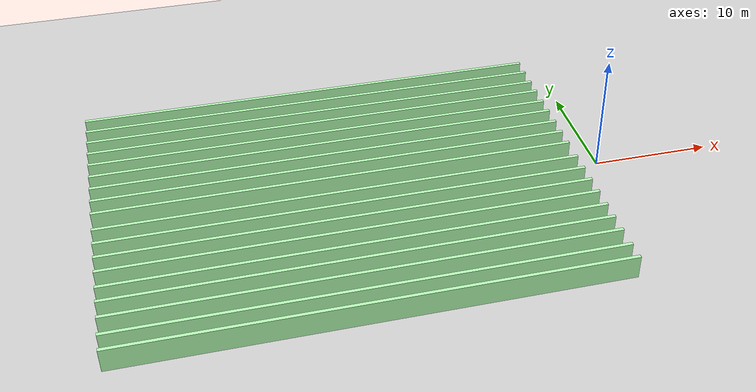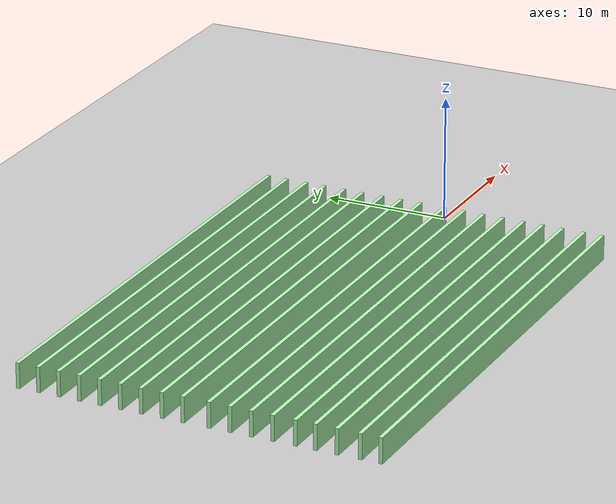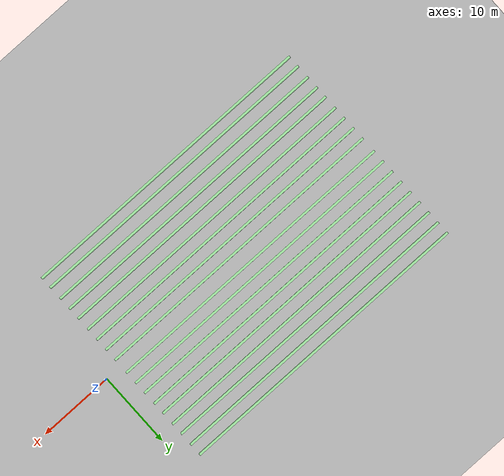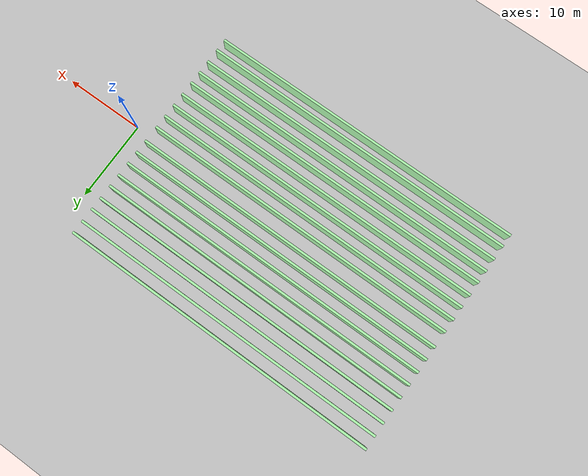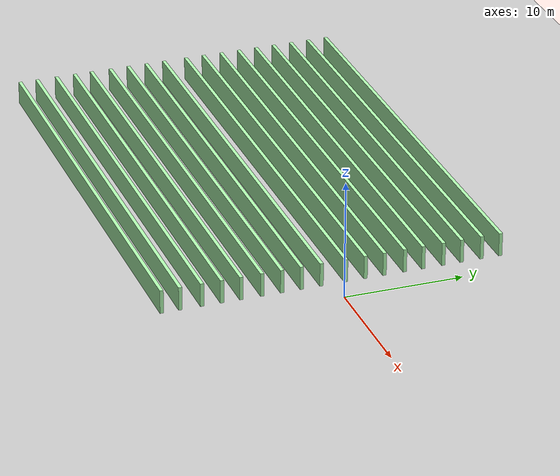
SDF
<sdf version="1.7">
 <world name="default">
  <model name="ground_plane">
   <static>1</static>
   <link name="link">
    <collision name="collision">
     <geometry><plane><normal>0 0 1</normal><size>100 100</size></plane></geometry>
     <surface>
      <contact><collide_bitmask>65535</collide_bitmask></contact>
      <friction><ode><mu>100</mu><mu2>50</mu2></ode></friction>
     </surface>
    </collision>
    <visual name="visual">
     <cast_shadows>0</cast_shadows>
     <geometry><plane><normal>0 0 1</normal><size>100 100</size></plane></geometry>
     <material>
      <script><uri>file://media/materials/scripts/gazebo.material</uri><name>Gazebo/Grey</name></script>
     </material>
    </visual>
   </link>
  </model>
  <model name="carril_inv_real">
   <link name="link_0">
    <inertial>
     <mass>400</mass>
     <inertia><ixx>66.6667</ixx><ixy>0</ixy><ixz>0</ixz><iyy>53366.7</iyy><iyz>0</iyz><izz>53366.7</izz></inertia>
    </inertial>
    <visual name="visual">
     <geometry><box><size>40 0.3 2</size></box></geometry>
     <material>
      <lighting>1</lighting>
      <script><uri>file://media/materials/scripts/gazebo.material</uri><name>Gazebo/Grey</name></script>
      <shader type="pixel"><normal_map>__default__</normal_map></shader>
      <ambient>0.3 0.3 0.3 1</ambient>
      <diffuse>0.7 1 0.7 1</diffuse>
      <specular>0.01 1 0.01 1</specular>
      <emissive>0 1 0 1</emissive>
     </material>
    </visual>
    <collision name="collision">
     <geometry><box><size>40 0.3 2</size></box></geometry>
     <surface>
      <friction>
       <ode><mu>1</mu><mu2>1</mu2><fdir1>0 0 0</fdir1><slip1>0</slip1><slip2>0</slip2></ode>
       <torsional>
        <coefficient>1</coefficient>
        <patch_radius>0</patch_radius>
        <surface_radius>0</surface_radius>
        <use_patch_radius>1</use_patch_radius>
        <ode><slip>0</slip></ode>
       </torsional>
      </friction>
      <bounce><restitution_coefficient>0</restitution_coefficient><threshold>1e+06</threshold></bounce>
      <contact>
       <collide_without_contact>0</collide_without_contact>
       <collide_without_contact_bitmask>1</collide_without_contact_bitmask>
       <collide_bitmask>1</collide_bitmask>
       <ode>
        <soft_cfm>0</soft_cfm>
        <soft_erp>0.2</soft_erp>
        <kp>1e+13</kp>
        <kd>1</kd>
        <max_vel>0.01</max_vel>
        <min_depth>0</min_depth>
       </ode>
       <bullet>
        <split_impulse>1</split_impulse>
        <split_impulse_penetration_threshold>-0.01</split_impulse_penetration_threshold>
        <soft_cfm>0</soft_cfm>
        <soft_erp>0.2</soft_erp>
        <kp>1e+13</kp>
        <kd>1</kd>
       </bullet>
      </contact>
     </surface>
    </collision>
   </link>
   <static>0</static>
   <pose>-22.3 14.225 0.999986 0 -1e-06 -0.000337</pose>
  </model>
  <model name="carril_inv_real_clone">
   <link name="link_0">
    <inertial>
     <mass>400</mass>
     <inertia><ixx>66.6667</ixx><ixy>0</ixy><ixz>0</ixz><iyy>53366.7</iyy><iyz>0</iyz><izz>53366.7</izz></inertia>
    </inertial>
    <visual name="visual">
     <geometry><box><size>40 0.3 2</size></box></geometry>
     <material>
      <lighting>1</lighting>
      <script><uri>file://media/materials/scripts/gazebo.material</uri><name>Gazebo/Grey</name></script>
      <shader type="pixel"><normal_map>__default__</normal_map></shader>
      <ambient>0.3 0.3 0.3 1</ambient>
      <diffuse>0.7 1 0.7 1</diffuse>
      <specular>0.01 1 0.01 1</specular>
      <emissive>0 1 0 1</emissive>
     </material>
    </visual>
    <collision name="collision">
     <geometry><box><size>40 0.3 2</size></box></geometry>
     <surface>
      <friction>
       <ode><mu>1</mu><mu2>1</mu2><fdir1>0 0 0</fdir1><slip1>0</slip1><slip2>0</slip2></ode>
       <torsional>
        <coefficient>1</coefficient>
        <patch_radius>0</patch_radius>
        <surface_radius>0</surface_radius>
        <use_patch_radius>1</use_patch_radius>
        <ode><slip>0</slip></ode>
       </torsional>
      </friction>
      <bounce><restitution_coefficient>0</restitution_coefficient><threshold>1e+06</threshold></bounce>
      <contact>
       <collide_without_contact>0</collide_without_contact>
       <collide_without_contact_bitmask>1</collide_without_contact_bitmask>
       <collide_bitmask>1</collide_bitmask>
       <ode>
        <soft_cfm>0</soft_cfm>
        <soft_erp>0.2</soft_erp>
        <kp>1e+13</kp>
        <kd>1</kd>
        <max_vel>0.01</max_vel>
        <min_depth>0</min_depth>
       </ode>
       <bullet>
        <split_impulse>1</split_impulse>
        <split_impulse_penetration_threshold>-0.01</split_impulse_penetration_threshold>
        <soft_cfm>0</soft_cfm>
        <soft_erp>0.2</soft_erp>
        <kp>1e+13</kp>
        <kd>1</kd>
       </bullet>
      </contact>
     </surface>
    </collision>
   </link>
   <static>0</static>
   <pose>-22.2999 12.5908 1 0 -0 0.000855</pose>
  </model>
  <model name="carril_inv_real_clone_0">
   <link name="link_0">
    <inertial>
     <mass>400</mass>
     <inertia><ixx>66.6667</ixx><ixy>0</ixy><ixz>0</ixz><iyy>53366.7</iyy><iyz>0</iyz><izz>53366.7</izz></inertia>
    </inertial>
    <visual name="visual">
     <geometry><box><size>40 0.3 2</size></box></geometry>
     <material>
      <lighting>1</lighting>
      <script><uri>file://media/materials/scripts/gazebo.material</uri><name>Gazebo/Grey</name></script>
      <shader type="pixel"><normal_map>__default__</normal_map></shader>
      <ambient>0.3 0.3 0.3 1</ambient>
      <diffuse>0.7 1 0.7 1</diffuse>
      <specular>0.01 1 0.01 1</specular>
      <emissive>0 1 0 1</emissive>
     </material>
    </visual>
    <collision name="collision">
     <geometry><box><size>40 0.3 2</size></box></geometry>
     <surface>
      <friction>
       <ode><mu>1</mu><mu2>1</mu2><fdir1>0 0 0</fdir1><slip1>0</slip1><slip2>0</slip2></ode>
       <torsional>
        <coefficient>1</coefficient>
        <patch_radius>0</patch_radius>
        <surface_radius>0</surface_radius>
        <use_patch_radius>1</use_patch_radius>
        <ode><slip>0</slip></ode>
       </torsional>
      </friction>
      <bounce><restitution_coefficient>0</restitution_coefficient><threshold>1e+06</threshold></bounce>
      <contact>
       <collide_without_contact>0</collide_without_contact>
       <collide_without_contact_bitmask>1</collide_without_contact_bitmask>
       <collide_bitmask>1</collide_bitmask>
       <ode>
        <soft_cfm>0</soft_cfm>
        <soft_erp>0.2</soft_erp>
        <kp>1e+13</kp>
        <kd>1</kd>
        <max_vel>0.01</max_vel>
        <min_depth>0</min_depth>
       </ode>
       <bullet>
        <split_impulse>1</split_impulse>
        <split_impulse_penetration_threshold>-0.01</split_impulse_penetration_threshold>
        <soft_cfm>0</soft_cfm>
        <soft_erp>0.2</soft_erp>
        <kp>1e+13</kp>
        <kd>1</kd>
       </bullet>
      </contact>
     </surface>
    </collision>
   </link>
   <static>0</static>
   <pose>-22.2999 10.9037 0.999998 0 0 -0.000993</pose>
  </model>
  <model name="carril_inv_real_clone_1">
   <link name="link_0">
    <inertial>
     <mass>400</mass>
     <inertia><ixx>66.6667</ixx><ixy>0</ixy><ixz>0</ixz><iyy>53366.7</iyy><iyz>0</iyz><izz>53366.7</izz></inertia>
    </inertial>
    <visual name="visual">
     <geometry><box><size>40 0.3 2</size></box></geometry>
     <material>
      <lighting>1</lighting>
      <script><uri>file://media/materials/scripts/gazebo.material</uri><name>Gazebo/Grey</name></script>
      <shader type="pixel"><normal_map>__default__</normal_map></shader>
      <ambient>0.3 0.3 0.3 1</ambient>
      <diffuse>0.7 1 0.7 1</diffuse>
      <specular>0.01 1 0.01 1</specular>
      <emissive>0 1 0 1</emissive>
     </material>
    </visual>
    <collision name="collision">
     <geometry><box><size>40 0.3 2</size></box></geometry>
     <surface>
      <friction>
       <ode><mu>1</mu><mu2>1</mu2><fdir1>0 0 0</fdir1><slip1>0</slip1><slip2>0</slip2></ode>
       <torsional>
        <coefficient>1</coefficient>
        <patch_radius>0</patch_radius>
        <surface_radius>0</surface_radius>
        <use_patch_radius>1</use_patch_radius>
        <ode><slip>0</slip></ode>
       </torsional>
      </friction>
      <bounce><restitution_coefficient>0</restitution_coefficient><threshold>1e+06</threshold></bounce>
      <contact>
       <collide_without_contact>0</collide_without_contact>
       <collide_without_contact_bitmask>1</collide_without_contact_bitmask>
       <collide_bitmask>1</collide_bitmask>
       <ode>
        <soft_cfm>0</soft_cfm>
        <soft_erp>0.2</soft_erp>
        <kp>1e+13</kp>
        <kd>1</kd>
        <max_vel>0.01</max_vel>
        <min_depth>0</min_depth>
       </ode>
       <bullet>
        <split_impulse>1</split_impulse>
        <split_impulse_penetration_threshold>-0.01</split_impulse_penetration_threshold>
        <soft_cfm>0</soft_cfm>
        <soft_erp>0.2</soft_erp>
        <kp>1e+13</kp>
        <kd>1</kd>
       </bullet>
      </contact>
     </surface>
    </collision>
   </link>
   <static>0</static>
   <pose>-22.2999 9.29145 1 0 -0 0.000903</pose>
  </model>
  <model name="carril_inv_real_clone_2">
   <link name="link_0">
    <inertial>
     <mass>400</mass>
     <inertia><ixx>66.6667</ixx><ixy>0</ixy><ixz>0</ixz><iyy>53366.7</iyy><iyz>0</iyz><izz>53366.7</izz></inertia>
    </inertial>
    <visual name="visual">
     <geometry><box><size>40 0.3 2</size></box></geometry>
     <material>
      <lighting>1</lighting>
      <script><uri>file://media/materials/scripts/gazebo.material</uri><name>Gazebo/Grey</name></script>
      <shader type="pixel"><normal_map>__default__</normal_map></shader>
      <ambient>0.3 0.3 0.3 1</ambient>
      <diffuse>0.7 1 0.7 1</diffuse>
      <specular>0.01 1 0.01 1</specular>
      <emissive>0 1 0 1</emissive>
     </material>
    </visual>
    <collision name="collision">
     <geometry><box><size>40 0.3 2</size></box></geometry>
     <surface>
      <friction>
       <ode><mu>1</mu><mu2>1</mu2><fdir1>0 0 0</fdir1><slip1>0</slip1><slip2>0</slip2></ode>
       <torsional>
        <coefficient>1</coefficient>
        <patch_radius>0</patch_radius>
        <surface_radius>0</surface_radius>
        <use_patch_radius>1</use_patch_radius>
        <ode><slip>0</slip></ode>
       </torsional>
      </friction>
      <bounce><restitution_coefficient>0</restitution_coefficient><threshold>1e+06</threshold></bounce>
      <contact>
       <collide_without_contact>0</collide_without_contact>
       <collide_without_contact_bitmask>1</collide_without_contact_bitmask>
       <collide_bitmask>1</collide_bitmask>
       <ode>
        <soft_cfm>0</soft_cfm>
        <soft_erp>0.2</soft_erp>
        <kp>1e+13</kp>
        <kd>1</kd>
        <max_vel>0.01</max_vel>
        <min_depth>0</min_depth>
       </ode>
       <bullet>
        <split_impulse>1</split_impulse>
        <split_impulse_penetration_threshold>-0.01</split_impulse_penetration_threshold>
        <soft_cfm>0</soft_cfm>
        <soft_erp>0.2</soft_erp>
        <kp>1e+13</kp>
        <kd>1</kd>
       </bullet>
      </contact>
     </surface>
    </collision>
   </link>
   <static>0</static>
   <pose>-22.2999 7.60432 0.999998 0 0 -0.000945</pose>
  </model>
  <model name="carril_inv_real_clone_3">
   <link name="link_0">
    <inertial>
     <mass>400</mass>
     <inertia><ixx>66.6667</ixx><ixy>0</ixy><ixz>0</ixz><iyy>53366.7</iyy><iyz>0</iyz><izz>53366.7</izz></inertia>
    </inertial>
    <visual name="visual">
     <geometry><box><size>40 0.3 2</size></box></geometry>
     <material>
      <lighting>1</lighting>
      <script><uri>file://media/materials/scripts/gazebo.material</uri><name>Gazebo/Grey</name></script>
      <shader type="pixel"><normal_map>__default__</normal_map></shader>
      <ambient>0.3 0.3 0.3 1</ambient>
      <diffuse>0.7 1 0.7 1</diffuse>
      <specular>0.01 1 0.01 1</specular>
      <emissive>0 1 0 1</emissive>
     </material>
    </visual>
    <collision name="collision">
     <geometry><box><size>40 0.3 2</size></box></geometry>
     <surface>
      <friction>
       <ode><mu>1</mu><mu2>1</mu2><fdir1>0 0 0</fdir1><slip1>0</slip1><slip2>0</slip2></ode>
       <torsional>
        <coefficient>1</coefficient>
        <patch_radius>0</patch_radius>
        <surface_radius>0</surface_radius>
        <use_patch_radius>1</use_patch_radius>
        <ode><slip>0</slip></ode>
       </torsional>
      </friction>
      <bounce><restitution_coefficient>0</restitution_coefficient><threshold>1e+06</threshold></bounce>
      <contact>
       <collide_without_contact>0</collide_without_contact>
       <collide_without_contact_bitmask>1</collide_without_contact_bitmask>
       <collide_bitmask>1</collide_bitmask>
       <ode>
        <soft_cfm>0</soft_cfm>
        <soft_erp>0.2</soft_erp>
        <kp>1e+13</kp>
        <kd>1</kd>
        <max_vel>0.01</max_vel>
        <min_depth>0</min_depth>
       </ode>
       <bullet>
        <split_impulse>1</split_impulse>
        <split_impulse_penetration_threshold>-0.01</split_impulse_penetration_threshold>
        <soft_cfm>0</soft_cfm>
        <soft_erp>0.2</soft_erp>
        <kp>1e+13</kp>
        <kd>1</kd>
       </bullet>
      </contact>
     </surface>
    </collision>
   </link>
   <static>0</static>
   <pose>-22.2999 5.9921 1 0 -0 0.000952</pose>
  </model>
  <model name="carril_inv_real_clone_4">
   <link name="link_0">
    <inertial>
     <mass>400</mass>
     <inertia><ixx>66.6667</ixx><ixy>0</ixy><ixz>0</ixz><iyy>53366.7</iyy><iyz>0</iyz><izz>53366.7</izz></inertia>
    </inertial>
    <visual name="visual">
     <geometry><box><size>40 0.3 2</size></box></geometry>
     <material>
      <lighting>1</lighting>
      <script><uri>file://media/materials/scripts/gazebo.material</uri><name>Gazebo/Grey</name></script>
      <shader type="pixel"><normal_map>__default__</normal_map></shader>
      <ambient>0.3 0.3 0.3 1</ambient>
      <diffuse>0.7 1 0.7 1</diffuse>
      <specular>0.01 1 0.01 1</specular>
      <emissive>0 1 0 1</emissive>
     </material>
    </visual>
    <collision name="collision">
     <geometry><box><size>40 0.3 2</size></box></geometry>
     <surface>
      <friction>
       <ode><mu>1</mu><mu2>1</mu2><fdir1>0 0 0</fdir1><slip1>0</slip1><slip2>0</slip2></ode>
       <torsional>
        <coefficient>1</coefficient>
        <patch_radius>0</patch_radius>
        <surface_radius>0</surface_radius>
        <use_patch_radius>1</use_patch_radius>
        <ode><slip>0</slip></ode>
       </torsional>
      </friction>
      <bounce><restitution_coefficient>0</restitution_coefficient><threshold>1e+06</threshold></bounce>
      <contact>
       <collide_without_contact>0</collide_without_contact>
       <collide_without_contact_bitmask>1</collide_without_contact_bitmask>
       <collide_bitmask>1</collide_bitmask>
       <ode>
        <soft_cfm>0</soft_cfm>
        <soft_erp>0.2</soft_erp>
        <kp>1e+13</kp>
        <kd>1</kd>
        <max_vel>0.01</max_vel>
        <min_depth>0</min_depth>
       </ode>
       <bullet>
        <split_impulse>1</split_impulse>
        <split_impulse_penetration_threshold>-0.01</split_impulse_penetration_threshold>
        <soft_cfm>0</soft_cfm>
        <soft_erp>0.2</soft_erp>
        <kp>1e+13</kp>
        <kd>1</kd>
       </bullet>
      </contact>
     </surface>
    </collision>
   </link>
   <static>0</static>
   <pose>-22.2999 4.30497 0.999998 0 0 -0.000896</pose>
  </model>
  <model name="carril_inv_real_clone_6">
   <link name="link_0">
    <inertial>
     <mass>400</mass>
     <inertia><ixx>66.6667</ixx><ixy>0</ixy><ixz>0</ixz><iyy>53366.7</iyy><iyz>0</iyz><izz>53366.7</izz></inertia>
    </inertial>
    <visual name="visual">
     <geometry><box><size>40 0.3 2</size></box></geometry>
     <material>
      <lighting>1</lighting>
      <script><uri>file://media/materials/scripts/gazebo.material</uri><name>Gazebo/Grey</name></script>
      <shader type="pixel"><normal_map>__default__</normal_map></shader>
      <ambient>0.3 0.3 0.3 1</ambient>
      <diffuse>0.7 1 0.7 1</diffuse>
      <specular>0.01 1 0.01 1</specular>
      <emissive>0 1 0 1</emissive>
     </material>
    </visual>
    <collision name="collision">
     <geometry><box><size>40 0.3 2</size></box></geometry>
     <surface>
      <friction>
       <ode><mu>1</mu><mu2>1</mu2><fdir1>0 0 0</fdir1><slip1>0</slip1><slip2>0</slip2></ode>
       <torsional>
        <coefficient>1</coefficient>
        <patch_radius>0</patch_radius>
        <surface_radius>0</surface_radius>
        <use_patch_radius>1</use_patch_radius>
        <ode><slip>0</slip></ode>
       </torsional>
      </friction>
      <bounce><restitution_coefficient>0</restitution_coefficient><threshold>1e+06</threshold></bounce>
      <contact>
       <collide_without_contact>0</collide_without_contact>
       <collide_without_contact_bitmask>1</collide_without_contact_bitmask>
       <collide_bitmask>1</collide_bitmask>
       <ode>
        <soft_cfm>0</soft_cfm>
        <soft_erp>0.2</soft_erp>
        <kp>1e+13</kp>
        <kd>1</kd>
        <max_vel>0.01</max_vel>
        <min_depth>0</min_depth>
       </ode>
       <bullet>
        <split_impulse>1</split_impulse>
        <split_impulse_penetration_threshold>-0.01</split_impulse_penetration_threshold>
        <soft_cfm>0</soft_cfm>
        <soft_erp>0.2</soft_erp>
        <kp>1e+13</kp>
        <kd>1</kd>
       </bullet>
      </contact>
     </surface>
    </collision>
   </link>
   <static>0</static>
   <pose>-22.3 2.675 0.999986 0 -1e-06 0.000227</pose>
  </model>
  <model name="carril_inv_real_clone_7">
   <link name="link_0">
    <inertial>
     <mass>400</mass>
     <inertia><ixx>66.6667</ixx><ixy>0</ixy><ixz>0</ixz><iyy>53366.7</iyy><iyz>0</iyz><izz>53366.7</izz></inertia>
    </inertial>
    <visual name="visual">
     <geometry><box><size>40 0.3 2</size></box></geometry>
     <material>
      <lighting>1</lighting>
      <script><uri>file://media/materials/scripts/gazebo.material</uri><name>Gazebo/Grey</name></script>
      <shader type="pixel"><normal_map>__default__</normal_map></shader>
      <ambient>0.3 0.3 0.3 1</ambient>
      <diffuse>0.7 1 0.7 1</diffuse>
      <specular>0.01 1 0.01 1</specular>
      <emissive>0 1 0 1</emissive>
     </material>
    </visual>
    <collision name="collision">
     <geometry><box><size>40 0.3 2</size></box></geometry>
     <surface>
      <friction>
       <ode><mu>1</mu><mu2>1</mu2><fdir1>0 0 0</fdir1><slip1>0</slip1><slip2>0</slip2></ode>
       <torsional>
        <coefficient>1</coefficient>
        <patch_radius>0</patch_radius>
        <surface_radius>0</surface_radius>
        <use_patch_radius>1</use_patch_radius>
        <ode><slip>0</slip></ode>
       </torsional>
      </friction>
      <bounce><restitution_coefficient>0</restitution_coefficient><threshold>1e+06</threshold></bounce>
      <contact>
       <collide_without_contact>0</collide_without_contact>
       <collide_without_contact_bitmask>1</collide_without_contact_bitmask>
       <collide_bitmask>1</collide_bitmask>
       <ode>
        <soft_cfm>0</soft_cfm>
        <soft_erp>0.2</soft_erp>
        <kp>1e+13</kp>
        <kd>1</kd>
        <max_vel>0.01</max_vel>
        <min_depth>0</min_depth>
       </ode>
       <bullet>
        <split_impulse>1</split_impulse>
        <split_impulse_penetration_threshold>-0.01</split_impulse_penetration_threshold>
        <soft_cfm>0</soft_cfm>
        <soft_erp>0.2</soft_erp>
        <kp>1e+13</kp>
        <kd>1</kd>
       </bullet>
      </contact>
     </surface>
    </collision>
   </link>
   <static>0</static>
   <pose>-22.3 1.025 0.999986 0 -1e-06 -0.000316</pose>
  </model>
  <model name="carril_inv_real_clone_7_clone">
   <link name="link_0">
    <inertial>
     <mass>400</mass>
     <inertia><ixx>66.6667</ixx><ixy>0</ixy><ixz>0</ixz><iyy>53366.7</iyy><iyz>0</iyz><izz>53366.7</izz></inertia>
    </inertial>
    <visual name="visual">
     <geometry><box><size>40 0.3 2</size></box></geometry>
     <material>
      <lighting>1</lighting>
      <script><uri>file://media/materials/scripts/gazebo.material</uri><name>Gazebo/Grey</name></script>
      <shader type="pixel"><normal_map>__default__</normal_map></shader>
      <ambient>0.3 0.3 0.3 1</ambient>
      <diffuse>0.7 1 0.7 1</diffuse>
      <specular>0.01 1 0.01 1</specular>
      <emissive>0 1 0 1</emissive>
     </material>
    </visual>
    <collision name="collision">
     <geometry><box><size>40 0.3 2</size></box></geometry>
     <surface>
      <friction>
       <ode><mu>1</mu><mu2>1</mu2><fdir1>0 0 0</fdir1><slip1>0</slip1><slip2>0</slip2></ode>
       <torsional>
        <coefficient>1</coefficient>
        <patch_radius>0</patch_radius>
        <surface_radius>0</surface_radius>
        <use_patch_radius>1</use_patch_radius>
        <ode><slip>0</slip></ode>
       </torsional>
      </friction>
      <bounce><restitution_coefficient>0</restitution_coefficient><threshold>1e+06</threshold></bounce>
      <contact>
       <collide_without_contact>0</collide_without_contact>
       <collide_without_contact_bitmask>1</collide_without_contact_bitmask>
       <collide_bitmask>1</collide_bitmask>
       <ode>
        <soft_cfm>0</soft_cfm>
        <soft_erp>0.2</soft_erp>
        <kp>1e+13</kp>
        <kd>1</kd>
        <max_vel>0.01</max_vel>
        <min_depth>0</min_depth>
       </ode>
       <bullet>
        <split_impulse>1</split_impulse>
        <split_impulse_penetration_threshold>-0.01</split_impulse_penetration_threshold>
        <soft_cfm>0</soft_cfm>
        <soft_erp>0.2</soft_erp>
        <kp>1e+13</kp>
        <kd>1</kd>
       </bullet>
      </contact>
     </surface>
    </collision>
   </link>
   <static>0</static>
   <pose>-22.3 -1.025 0.999986 0 1e-06 -0.000235</pose>
  </model>
  <model name="carril_inv_real_clone_7_clone_0">
   <link name="link_0">
    <inertial>
     <mass>400</mass>
     <inertia><ixx>66.6667</ixx><ixy>0</ixy><ixz>0</ixz><iyy>53366.7</iyy><iyz>0</iyz><izz>53366.7</izz></inertia>
    </inertial>
    <visual name="visual">
     <geometry><box><size>40 0.3 2</size></box></geometry>
     <material>
      <lighting>1</lighting>
      <script><uri>file://media/materials/scripts/gazebo.material</uri><name>Gazebo/Grey</name></script>
      <shader type="pixel"><normal_map>__default__</normal_map></shader>
      <ambient>0.3 0.3 0.3 1</ambient>
      <diffuse>0.7 1 0.7 1</diffuse>
      <specular>0.01 1 0.01 1</specular>
      <emissive>0 1 0 1</emissive>
     </material>
    </visual>
    <collision name="collision">
     <geometry><box><size>40 0.3 2</size></box></geometry>
     <surface>
      <friction>
       <ode><mu>1</mu><mu2>1</mu2><fdir1>0 0 0</fdir1><slip1>0</slip1><slip2>0</slip2></ode>
       <torsional>
        <coefficient>1</coefficient>
        <patch_radius>0</patch_radius>
        <surface_radius>0</surface_radius>
        <use_patch_radius>1</use_patch_radius>
        <ode><slip>0</slip></ode>
       </torsional>
      </friction>
      <bounce><restitution_coefficient>0</restitution_coefficient><threshold>1e+06</threshold></bounce>
      <contact>
       <collide_without_contact>0</collide_without_contact>
       <collide_without_contact_bitmask>1</collide_without_contact_bitmask>
       <collide_bitmask>1</collide_bitmask>
       <ode>
        <soft_cfm>0</soft_cfm>
        <soft_erp>0.2</soft_erp>
        <kp>1e+13</kp>
        <kd>1</kd>
        <max_vel>0.01</max_vel>
        <min_depth>0</min_depth>
       </ode>
       <bullet>
        <split_impulse>1</split_impulse>
        <split_impulse_penetration_threshold>-0.01</split_impulse_penetration_threshold>
        <soft_cfm>0</soft_cfm>
        <soft_erp>0.2</soft_erp>
        <kp>1e+13</kp>
        <kd>1</kd>
       </bullet>
      </contact>
     </surface>
    </collision>
   </link>
   <static>0</static>
   <pose>-22.3 -2.675 0.999986 0 -1e-06 -0.00024</pose>
  </model>
  <model name="carril_inv_real_clone_7_clone_1">
   <link name="link_0">
    <inertial>
     <mass>400</mass>
     <inertia><ixx>66.6667</ixx><ixy>0</ixy><ixz>0</ixz><iyy>53366.7</iyy><iyz>0</iyz><izz>53366.7</izz></inertia>
    </inertial>
    <visual name="visual">
     <geometry><box><size>40 0.3 2</size></box></geometry>
     <material>
      <lighting>1</lighting>
      <script><uri>file://media/materials/scripts/gazebo.material</uri><name>Gazebo/Grey</name></script>
      <shader type="pixel"><normal_map>__default__</normal_map></shader>
      <ambient>0.3 0.3 0.3 1</ambient>
      <diffuse>0.7 1 0.7 1</diffuse>
      <specular>0.01 1 0.01 1</specular>
      <emissive>0 1 0 1</emissive>
     </material>
    </visual>
    <collision name="collision">
     <geometry><box><size>40 0.3 2</size></box></geometry>
     <surface>
      <friction>
       <ode><mu>1</mu><mu2>1</mu2><fdir1>0 0 0</fdir1><slip1>0</slip1><slip2>0</slip2></ode>
       <torsional>
        <coefficient>1</coefficient>
        <patch_radius>0</patch_radius>
        <surface_radius>0</surface_radius>
        <use_patch_radius>1</use_patch_radius>
        <ode><slip>0</slip></ode>
       </torsional>
      </friction>
      <bounce><restitution_coefficient>0</restitution_coefficient><threshold>1e+06</threshold></bounce>
      <contact>
       <collide_without_contact>0</collide_without_contact>
       <collide_without_contact_bitmask>1</collide_without_contact_bitmask>
       <collide_bitmask>1</collide_bitmask>
       <ode>
        <soft_cfm>0</soft_cfm>
        <soft_erp>0.2</soft_erp>
        <kp>1e+13</kp>
        <kd>1</kd>
        <max_vel>0.01</max_vel>
        <min_depth>0</min_depth>
       </ode>
       <bullet>
        <split_impulse>1</split_impulse>
        <split_impulse_penetration_threshold>-0.01</split_impulse_penetration_threshold>
        <soft_cfm>0</soft_cfm>
        <soft_erp>0.2</soft_erp>
        <kp>1e+13</kp>
        <kd>1</kd>
       </bullet>
      </contact>
     </surface>
    </collision>
   </link>
   <static>0</static>
   <pose>-22.3 -4.325 0.999986 -0 1e-06 0.000109</pose>
  </model>
  <model name="carril_inv_real_clone_7_clone_2">
   <link name="link_0">
    <inertial>
     <mass>400</mass>
     <inertia><ixx>66.6667</ixx><ixy>0</ixy><ixz>0</ixz><iyy>53366.7</iyy><iyz>0</iyz><izz>53366.7</izz></inertia>
    </inertial>
    <visual name="visual">
     <geometry><box><size>40 0.3 2</size></box></geometry>
     <material>
      <lighting>1</lighting>
      <script><uri>file://media/materials/scripts/gazebo.material</uri><name>Gazebo/Grey</name></script>
      <shader type="pixel"><normal_map>__default__</normal_map></shader>
      <ambient>0.3 0.3 0.3 1</ambient>
      <diffuse>0.7 1 0.7 1</diffuse>
      <specular>0.01 1 0.01 1</specular>
      <emissive>0 1 0 1</emissive>
     </material>
    </visual>
    <collision name="collision">
     <geometry><box><size>40 0.3 2</size></box></geometry>
     <surface>
      <friction>
       <ode><mu>1</mu><mu2>1</mu2><fdir1>0 0 0</fdir1><slip1>0</slip1><slip2>0</slip2></ode>
       <torsional>
        <coefficient>1</coefficient>
        <patch_radius>0</patch_radius>
        <surface_radius>0</surface_radius>
        <use_patch_radius>1</use_patch_radius>
        <ode><slip>0</slip></ode>
       </torsional>
      </friction>
      <bounce><restitution_coefficient>0</restitution_coefficient><threshold>1e+06</threshold></bounce>
      <contact>
       <collide_without_contact>0</collide_without_contact>
       <collide_without_contact_bitmask>1</collide_without_contact_bitmask>
       <collide_bitmask>1</collide_bitmask>
       <ode>
        <soft_cfm>0</soft_cfm>
        <soft_erp>0.2</soft_erp>
        <kp>1e+13</kp>
        <kd>1</kd>
        <max_vel>0.01</max_vel>
        <min_depth>0</min_depth>
       </ode>
       <bullet>
        <split_impulse>1</split_impulse>
        <split_impulse_penetration_threshold>-0.01</split_impulse_penetration_threshold>
        <soft_cfm>0</soft_cfm>
        <soft_erp>0.2</soft_erp>
        <kp>1e+13</kp>
        <kd>1</kd>
       </bullet>
      </contact>
     </surface>
    </collision>
   </link>
   <static>0</static>
   <pose>-22.3 -5.975 0.999986 0 -1e-06 0.000103</pose>
  </model>
  <model name="carril_inv_real_clone_7_clone_3">
   <link name="link_0">
    <inertial>
     <mass>400</mass>
     <inertia><ixx>66.6667</ixx><ixy>0</ixy><ixz>0</ixz><iyy>53366.7</iyy><iyz>0</iyz><izz>53366.7</izz></inertia>
    </inertial>
    <visual name="visual">
     <geometry><box><size>40 0.3 2</size></box></geometry>
     <material>
      <lighting>1</lighting>
      <script><uri>file://media/materials/scripts/gazebo.material</uri><name>Gazebo/Grey</name></script>
      <shader type="pixel"><normal_map>__default__</normal_map></shader>
      <ambient>0.3 0.3 0.3 1</ambient>
      <diffuse>0.7 1 0.7 1</diffuse>
      <specular>0.01 1 0.01 1</specular>
      <emissive>0 1 0 1</emissive>
     </material>
    </visual>
    <collision name="collision">
     <geometry><box><size>40 0.3 2</size></box></geometry>
     <surface>
      <friction>
       <ode><mu>1</mu><mu2>1</mu2><fdir1>0 0 0</fdir1><slip1>0</slip1><slip2>0</slip2></ode>
       <torsional>
        <coefficient>1</coefficient>
        <patch_radius>0</patch_radius>
        <surface_radius>0</surface_radius>
        <use_patch_radius>1</use_patch_radius>
        <ode><slip>0</slip></ode>
       </torsional>
      </friction>
      <bounce><restitution_coefficient>0</restitution_coefficient><threshold>1e+06</threshold></bounce>
      <contact>
       <collide_without_contact>0</collide_without_contact>
       <collide_without_contact_bitmask>1</collide_without_contact_bitmask>
       <collide_bitmask>1</collide_bitmask>
       <ode>
        <soft_cfm>0</soft_cfm>
        <soft_erp>0.2</soft_erp>
        <kp>1e+13</kp>
        <kd>1</kd>
        <max_vel>0.01</max_vel>
        <min_depth>0</min_depth>
       </ode>
       <bullet>
        <split_impulse>1</split_impulse>
        <split_impulse_penetration_threshold>-0.01</split_impulse_penetration_threshold>
        <soft_cfm>0</soft_cfm>
        <soft_erp>0.2</soft_erp>
        <kp>1e+13</kp>
        <kd>1</kd>
       </bullet>
      </contact>
     </surface>
    </collision>
   </link>
   <static>0</static>
   <pose>-22.2999 -7.70917 1 0 -0 0.00043</pose>
  </model>
  <model name="carril_inv_real_clone_7_clone_4">
   <link name="link_0">
    <inertial>
     <mass>400</mass>
     <inertia><ixx>66.6667</ixx><ixy>0</ixy><ixz>0</ixz><iyy>53366.7</iyy><iyz>0</iyz><izz>53366.7</izz></inertia>
    </inertial>
    <visual name="visual">
     <geometry><box><size>40 0.3 2</size></box></geometry>
     <material>
      <lighting>1</lighting>
      <script><uri>file://media/materials/scripts/gazebo.material</uri><name>Gazebo/Grey</name></script>
      <shader type="pixel"><normal_map>__default__</normal_map></shader>
      <ambient>0.3 0.3 0.3 1</ambient>
      <diffuse>0.7 1 0.7 1</diffuse>
      <specular>0.01 1 0.01 1</specular>
      <emissive>0 1 0 1</emissive>
     </material>
    </visual>
    <collision name="collision">
     <geometry><box><size>40 0.3 2</size></box></geometry>
     <surface>
      <friction>
       <ode><mu>1</mu><mu2>1</mu2><fdir1>0 0 0</fdir1><slip1>0</slip1><slip2>0</slip2></ode>
       <torsional>
        <coefficient>1</coefficient>
        <patch_radius>0</patch_radius>
        <surface_radius>0</surface_radius>
        <use_patch_radius>1</use_patch_radius>
        <ode><slip>0</slip></ode>
       </torsional>
      </friction>
      <bounce><restitution_coefficient>0</restitution_coefficient><threshold>1e+06</threshold></bounce>
      <contact>
       <collide_without_contact>0</collide_without_contact>
       <collide_without_contact_bitmask>1</collide_without_contact_bitmask>
       <collide_bitmask>1</collide_bitmask>
       <ode>
        <soft_cfm>0</soft_cfm>
        <soft_erp>0.2</soft_erp>
        <kp>1e+13</kp>
        <kd>1</kd>
        <max_vel>0.01</max_vel>
        <min_depth>0</min_depth>
       </ode>
       <bullet>
        <split_impulse>1</split_impulse>
        <split_impulse_penetration_threshold>-0.01</split_impulse_penetration_threshold>
        <soft_cfm>0</soft_cfm>
        <soft_erp>0.2</soft_erp>
        <kp>1e+13</kp>
        <kd>1</kd>
       </bullet>
      </contact>
     </surface>
    </collision>
   </link>
   <static>0</static>
   <pose>-22.3001 -9.27229 1 0 0 -0.000737</pose>
  </model>
  <model name="carril_inv_real_clone_7_clone_5">
   <link name="link_0">
    <inertial>
     <mass>400</mass>
     <inertia><ixx>66.6667</ixx><ixy>0</ixy><ixz>0</ixz><iyy>53366.7</iyy><iyz>0</iyz><izz>53366.7</izz></inertia>
    </inertial>
    <visual name="visual">
     <geometry><box><size>40 0.3 2</size></box></geometry>
     <material>
      <lighting>1</lighting>
      <script><uri>file://media/materials/scripts/gazebo.material</uri><name>Gazebo/Grey</name></script>
      <shader type="pixel"><normal_map>__default__</normal_map></shader>
      <ambient>0.3 0.3 0.3 1</ambient>
      <diffuse>0.7 1 0.7 1</diffuse>
      <specular>0.01 1 0.01 1</specular>
      <emissive>0 1 0 1</emissive>
     </material>
    </visual>
    <collision name="collision">
     <geometry><box><size>40 0.3 2</size></box></geometry>
     <surface>
      <friction>
       <ode><mu>1</mu><mu2>1</mu2><fdir1>0 0 0</fdir1><slip1>0</slip1><slip2>0</slip2></ode>
       <torsional>
        <coefficient>1</coefficient>
        <patch_radius>0</patch_radius>
        <surface_radius>0</surface_radius>
        <use_patch_radius>1</use_patch_radius>
        <ode><slip>0</slip></ode>
       </torsional>
      </friction>
      <bounce><restitution_coefficient>0</restitution_coefficient><threshold>1e+06</threshold></bounce>
      <contact>
       <collide_without_contact>0</collide_without_contact>
       <collide_without_contact_bitmask>1</collide_without_contact_bitmask>
       <collide_bitmask>1</collide_bitmask>
       <ode>
        <soft_cfm>0</soft_cfm>
        <soft_erp>0.2</soft_erp>
        <kp>1e+13</kp>
        <kd>1</kd>
        <max_vel>0.01</max_vel>
        <min_depth>0</min_depth>
       </ode>
       <bullet>
        <split_impulse>1</split_impulse>
        <split_impulse_penetration_threshold>-0.01</split_impulse_penetration_threshold>
        <soft_cfm>0</soft_cfm>
        <soft_erp>0.2</soft_erp>
        <kp>1e+13</kp>
        <kd>1</kd>
       </bullet>
      </contact>
     </surface>
    </collision>
   </link>
   <static>0</static>
   <pose>-22.3 -10.9237 0.999986 0 1e-06 -0.000274</pose>
  </model>
  <model name="carril_inv_real_clone_7_clone_6">
   <link name="link_0">
    <inertial>
     <mass>400</mass>
     <inertia><ixx>66.6667</ixx><ixy>0</ixy><ixz>0</ixz><iyy>53366.7</iyy><iyz>0</iyz><izz>53366.7</izz></inertia>
    </inertial>
    <visual name="visual">
     <geometry><box><size>40 0.3 2</size></box></geometry>
     <material>
      <lighting>1</lighting>
      <script><uri>file://media/materials/scripts/gazebo.material</uri><name>Gazebo/Grey</name></script>
      <shader type="pixel"><normal_map>__default__</normal_map></shader>
      <ambient>0.3 0.3 0.3 1</ambient>
      <diffuse>0.7 1 0.7 1</diffuse>
      <specular>0.01 1 0.01 1</specular>
      <emissive>0 1 0 1</emissive>
     </material>
    </visual>
    <collision name="collision">
     <geometry><box><size>40 0.3 2</size></box></geometry>
     <surface>
      <friction>
       <ode><mu>1</mu><mu2>1</mu2><fdir1>0 0 0</fdir1><slip1>0</slip1><slip2>0</slip2></ode>
       <torsional>
        <coefficient>1</coefficient>
        <patch_radius>0</patch_radius>
        <surface_radius>0</surface_radius>
        <use_patch_radius>1</use_patch_radius>
        <ode><slip>0</slip></ode>
       </torsional>
      </friction>
      <bounce><restitution_coefficient>0</restitution_coefficient><threshold>1e+06</threshold></bounce>
      <contact>
       <collide_without_contact>0</collide_without_contact>
       <collide_without_contact_bitmask>1</collide_without_contact_bitmask>
       <collide_bitmask>1</collide_bitmask>
       <ode>
        <soft_cfm>0</soft_cfm>
        <soft_erp>0.2</soft_erp>
        <kp>1e+13</kp>
        <kd>1</kd>
        <max_vel>0.01</max_vel>
        <min_depth>0</min_depth>
       </ode>
       <bullet>
        <split_impulse>1</split_impulse>
        <split_impulse_penetration_threshold>-0.01</split_impulse_penetration_threshold>
        <soft_cfm>0</soft_cfm>
        <soft_erp>0.2</soft_erp>
        <kp>1e+13</kp>
        <kd>1</kd>
       </bullet>
      </contact>
     </surface>
    </collision>
   </link>
   <static>0</static>
   <pose>-22.3001 -12.6987 1 0 0 -0.000688</pose>
  </model>
  <model name="carril_inv_real_clone_7_clone_7">
   <link name="link_0">
    <inertial>
     <mass>400</mass>
     <inertia><ixx>66.6667</ixx><ixy>0</ixy><ixz>0</ixz><iyy>53366.7</iyy><iyz>0</iyz><izz>53366.7</izz></inertia>
    </inertial>
    <visual name="visual">
     <geometry><box><size>40 0.3 2</size></box></geometry>
     <material>
      <lighting>1</lighting>
      <script><uri>file://media/materials/scripts/gazebo.material</uri><name>Gazebo/Grey</name></script>
      <shader type="pixel"><normal_map>__default__</normal_map></shader>
      <ambient>0.3 0.3 0.3 1</ambient>
      <diffuse>0.7 1 0.7 1</diffuse>
      <specular>0.01 1 0.01 1</specular>
      <emissive>0 1 0 1</emissive>
     </material>
    </visual>
    <collision name="collision">
     <geometry><box><size>40 0.3 2</size></box></geometry>
     <surface>
      <friction>
       <ode><mu>1</mu><mu2>1</mu2><fdir1>0 0 0</fdir1><slip1>0</slip1><slip2>0</slip2></ode>
       <torsional>
        <coefficient>1</coefficient>
        <patch_radius>0</patch_radius>
        <surface_radius>0</surface_radius>
        <use_patch_radius>1</use_patch_radius>
        <ode><slip>0</slip></ode>
       </torsional>
      </friction>
      <bounce><restitution_coefficient>0</restitution_coefficient><threshold>1e+06</threshold></bounce>
      <contact>
       <collide_without_contact>0</collide_without_contact>
       <collide_without_contact_bitmask>1</collide_without_contact_bitmask>
       <collide_bitmask>1</collide_bitmask>
       <ode>
        <soft_cfm>0</soft_cfm>
        <soft_erp>0.2</soft_erp>
        <kp>1e+13</kp>
        <kd>1</kd>
        <max_vel>0.01</max_vel>
        <min_depth>0</min_depth>
       </ode>
       <bullet>
        <split_impulse>1</split_impulse>
        <split_impulse_penetration_threshold>-0.01</split_impulse_penetration_threshold>
        <soft_cfm>0</soft_cfm>
        <soft_erp>0.2</soft_erp>
        <kp>1e+13</kp>
        <kd>1</kd>
       </bullet>
      </contact>
     </surface>
    </collision>
   </link>
   <static>0</static>
   <pose>-22.3 -14.225 0.999986 -0 -1e-06 -0.000283</pose>
  </model>
 </world>
</sdf>
